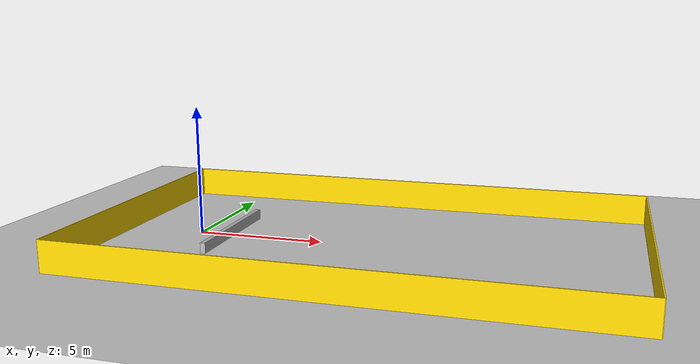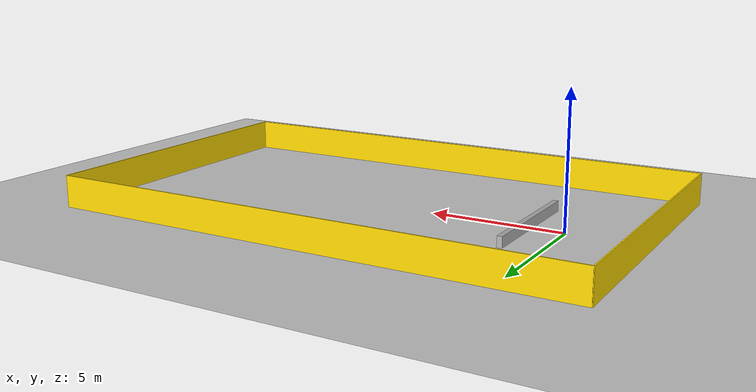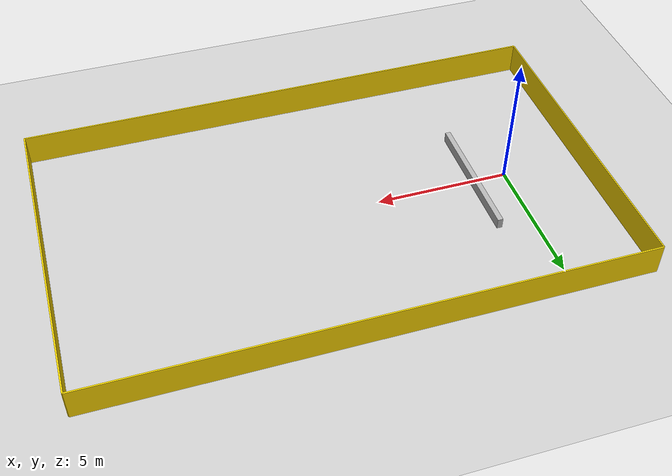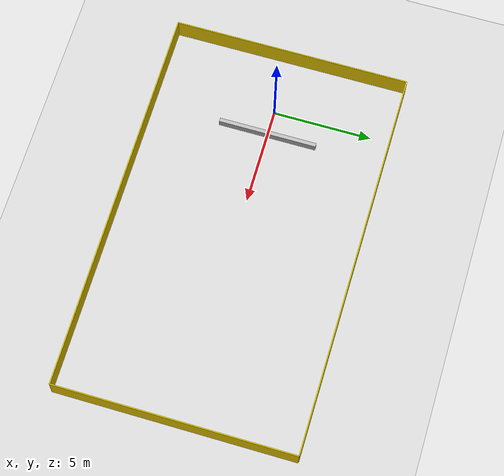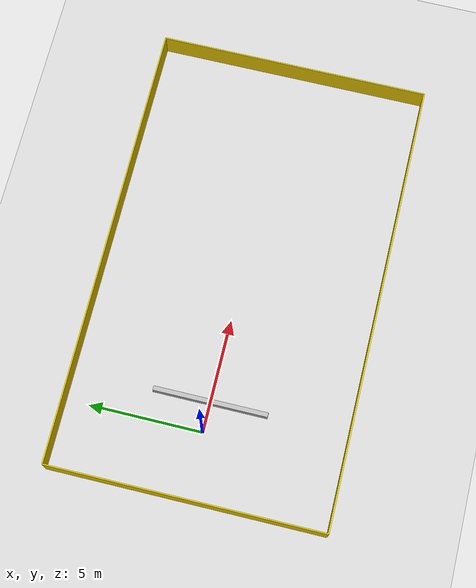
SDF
<?xml version="1.0" ?>
<sdf version="1.9">
  <world name="crazysim_low_wall">
    <physics type="ode">
      <max_step_size>0.001</max_step_size>
      <real_time_factor>1.0</real_time_factor>
      <real_time_update_rate>1000</real_time_update_rate>
    </physics>
    <plugin name='gz::sim::systems::Physics' filename='libgz-sim-physics-system.so'/>
    <plugin name='gz::sim::systems::UserCommands' filename='libgz-sim-user-commands-system.so'/>
    <plugin name='gz::sim::systems::SceneBroadcaster' filename='libgz-sim-scene-broadcaster-system.so'/>
    <plugin name='gz::sim::systems::Contact' filename='libgz-sim-contact-system.so'/>
    <plugin name='gz::sim::systems::Imu' filename='libgz-sim-imu-system.so'/>
    <plugin name='gz::sim::systems::AirPressure' filename='libgz-sim-air-pressure-system.so'/>
    <plugin name='gz::sim::systems::Sensors' filename='libgz-sim-sensors-system.so'>
      <render_engine>ogre2</render_engine>
    </plugin>
    <gravity>0 0 -9.80665</gravity>
    <magnetic_field>6e-06 2.3e-05 -4.2e-05</magnetic_field>
    <atmosphere type='adiabatic'/>
    <scene>
      <grid>false</grid>
      <ambient>0.4 0.4 0.4 1</ambient>
      <background>0.7 0.7 0.7 1</background>
      <shadows>true</shadows>
    </scene>

    <!-- ==== Ground plane ==== -->
    <model name="ground_plane">
      <static>true</static>
      <link name="link">
        <collision name="collision">
          <geometry>
            <plane>
              <normal>0 0 1</normal>
              <size>100 100</size>
            </plane>
          </geometry>
        </collision>
        <visual name="visual">
          <geometry>
            <plane>
              <normal>0 0 1</normal>
              <size>100 100</size>
            </plane>
          </geometry>
          <material>
            <ambient>0.8 0.8 0.8 1</ambient>
            <diffuse>0.8 0.8 0.8 1</diffuse>
            <specular>0.8 0.8 0.8 1</specular>
          </material>
        </visual>
      </link>
    </model>

    <!-- ==== Lighting ==== -->
    <light type="directional" name="sun">
      <cast_shadows>true</cast_shadows>
      <pose>0 0 10 0 0 0</pose>
      <diffuse>0.8 0.8 0.8 1</diffuse>
      <specular>0.2 0.2 0.2 1</specular>
      <attenuation>
        <range>1000</range>
        <constant>0.9</constant>
        <linear>0.01</linear>
        <quadratic>0.001</quadratic>
      </attenuation>
      <direction>-0.5 0.1 -0.9</direction>
    </light>

    <!-- ==== Surrounding boundary (visual-only frame): 20 m × 12 m ==== -->
    <!-- X: -3 to 17 (biased toward +x), Y: -6 to 6                   -->
    <model name="boundary_frame">
      <static>true</static>

      <!-- Top edge (along X) -->
      <link name="edge_top">
        <pose>7 6 0.6 0 0 0</pose>
        <visual name="visual">
          <geometry>
            <box><size>20 0.05 1.2</size></box>
          </geometry>
          <material>
            <ambient>1 0.85 0 1</ambient>
            <diffuse>1 0.85 0 1</diffuse>
          </material>
        </visual>
      </link>

      <!-- Bottom edge (along X) -->
      <link name="edge_bottom">
        <pose>7 -6 0.6 0 0 0</pose>
        <visual name="visual">
          <geometry>
            <box><size>20 0.05 1.2</size></box>
          </geometry>
          <material>
            <ambient>1 0.85 0 1</ambient>
            <diffuse>1 0.85 0 1</diffuse>
          </material>
        </visual>
      </link>

      <!-- Left edge (along Y) -->
      <link name="edge_left">
        <pose>-3 0 0.6 0 0 0</pose>
        <visual name="visual">
          <geometry>
            <box><size>0.05 12 1.2</size></box>
          </geometry>
          <material>
            <ambient>1 0.85 0 1</ambient>
            <diffuse>1 0.85 0 1</diffuse>
          </material>
        </visual>
      </link>

      <!-- Right edge (along Y) -->
      <link name="edge_right">
        <pose>17 0 0.6 0 0 0</pose>
        <visual name="visual">
          <geometry>
            <box><size>0.05 12 1.2</size></box>
          </geometry>
          <material>
            <ambient>1 0.85 0 1</ambient>
            <diffuse>1 0.85 0 1</diffuse>
          </material>
        </visual>
      </link>
    </model>

    <!-- Low wall matching maps/low_wall.py: Python x in [1.7, 1.9] -> world
         x in [1.2, 1.4] (map origin offset -0.5, -2.5), height 0.4 m,
         spanning the full 5 m map width in y. -->
    <model name="low_wall">
      <static>true</static>
      <pose>1.3 0 0.2 0 0 0</pose>
      <link name="link">
        <collision name="collision">
          <geometry><box><size>0.2 5.0 0.4</size></box></geometry>
        </collision>
        <visual name="visual">
          <geometry><box><size>0.2 5.0 0.4</size></box></geometry>
          <material>
            <ambient>0.5 0.5 0.5 1</ambient>
            <diffuse>0.7 0.7 0.7 1</diffuse>
          </material>
        </visual>
      </link>
    </model>

  </world>
</sdf>
